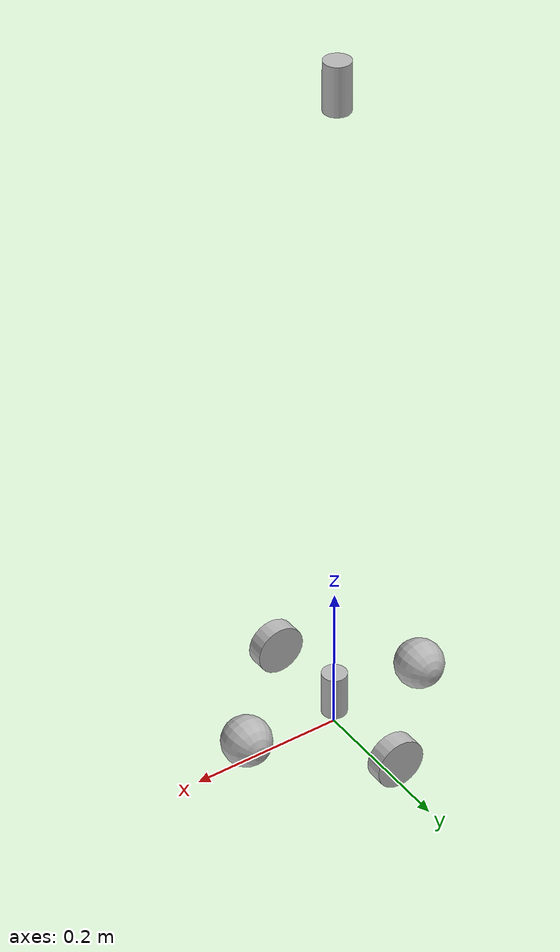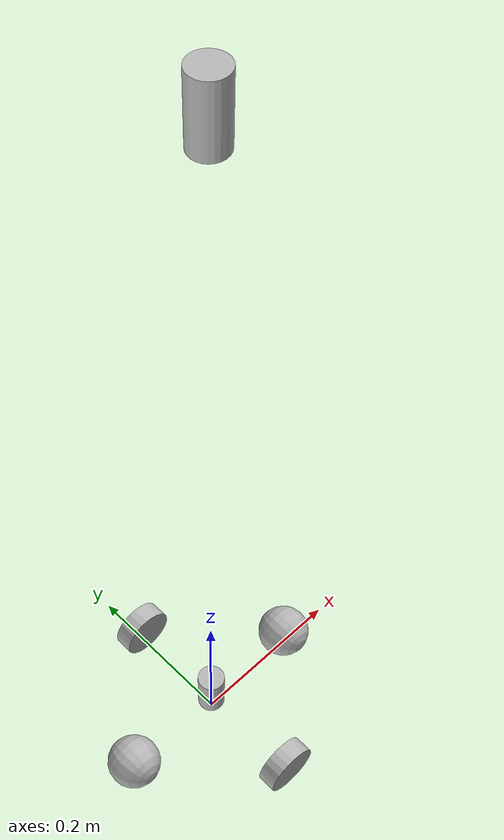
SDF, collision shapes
<?xml version="1.0" ?>
<sdf version="1.4">
  <model name="create">
    <link name="base">
      <inertial>
        <pose>0.001453 -0.000453 0.029787 0 0 0</pose>
        <inertia>
          <ixx>0.058640</ixx>
          <ixy>0.000124</ixy>
          <ixz>0.000615</ixz>
          <iyy>0.058786</iyy>
          <iyz>0.000014</iyz>
          <izz>1.532440</izz>
        </inertia>
        <mass>2.234000</mass>
      </inertial>

      <collision name="human_collision">
        <pose>0 0 0.9 0 0 1.570700</pose>
        <geometry>
          <cylinder>
            <radius>0.016495</radius>
            <length>0.061163</length>
          </cylinder>
        </geometry>
      </collision>
      <visual name="human">
        <pose>0 0 0 0 0 1.570700</pose>
        <geometry>
          <mesh>
            <uri>model://person_walking/meshes/walking.dae</uri>
          </mesh>
        </geometry>
      </visual>

      <collision name="base_collision">
        <pose>0 0 0.047800 0 0 0</pose>
        <geometry>
          <cylinder>
            <radius>0.016495</radius>
            <length>0.061163</length>
          </cylinder>
        </geometry>
      </collision>

      <collision name="front_wheel_collision">
        <pose>0.130000 0 0.03200 0 1.570700 1.570700</pose>
        <geometry>
          <sphere>
            <radius>0.032500</radius>
          </sphere>
        </geometry>
        <surface>
          <friction>
            <ode>
              <mu>0</mu>
              <mu2>0</mu2>
              <fdir1>0 0 0</fdir1>
              <slip1>0</slip1>
              <slip2>0</slip2>
            </ode>
          </friction>
        </surface>
      </collision>

      <collision name="rear_wheel_collision">
        <pose>-0.13 0 0.032 0 1.5707 1.5707</pose>
        <geometry>
          <sphere>
            <radius>0.032500</radius>
          </sphere>
        </geometry>
        <surface>
          <friction>
            <ode>
              <mu>0</mu>
              <mu2>0</mu2>
              <fdir1>0 0 0</fdir1>
              <slip1>0</slip1>
              <slip2>0</slip2>
            </ode>
          </friction>
        </surface>
      </collision>

      <sensor name="left_cliff_sensor" type="ray">
        <pose>0.070000 0.140000 0.027000 0 1.570790 0</pose>
        <ray>
          <scan>
            <horizontal>
              <samples>1</samples>
              <resolution>1.000000</resolution>
              <min_angle>0</min_angle>
              <max_angle>0</max_angle>
            </horizontal>
          </scan>
          <range>
            <min>0.010000</min>
            <max>0.040000</max>
            <resolution>0.100000</resolution>
          </range>
        </ray>
      </sensor>

      <sensor name="leftfront_cliff_sensor" type="ray">
        <pose>0.150000 0.040000 0.027000 0 1.570790 0</pose>
        <ray>
          <scan>
            <horizontal>
              <samples>1</samples>
              <resolution>1.000000</resolution>
              <min_angle>0</min_angle>
              <max_angle>0</max_angle>
            </horizontal>
          </scan>
          <range>
            <min>0.010000</min>
            <max>0.040000</max>
            <resolution>0.100000</resolution>
          </range>
        </ray>
      </sensor>

      <sensor name="right_cliff_sensor" type="ray">
        <pose>0.070000 -0.140000 0.027000 0 1.570790 0</pose>
        <ray>
          <scan>
            <horizontal>
              <samples>1</samples>
              <resolution>1.000000</resolution>
              <min_angle>0</min_angle>
              <max_angle>0</max_angle>
            </horizontal>
          </scan>
          <range>
            <min>0.010000</min>
            <max>0.040000</max>
            <resolution>0.100000</resolution>
          </range>
        </ray>
      </sensor>

      <sensor name="rightfront_cliff_sensor" type="ray">
        <pose>0.150000 -0.040000 0.027000 0 1.570790 0</pose>
        <ray>
          <scan>
            <horizontal>
              <samples>1</samples>
              <resolution>1.000000</resolution>
              <min_angle>0</min_angle>
              <max_angle>0</max_angle>
            </horizontal>
          </scan>
          <range>
            <min>0.010000</min>
            <max>0.040000</max>
            <resolution>0.100000</resolution>
          </range>
        </ray>
      </sensor>

      <sensor name="wall_sensor" type="ray">
        <pose>0.090000 -0.120000 0.059000 0 0 -1.000000</pose>
        <ray>
          <scan>
            <horizontal>
              <samples>1</samples>
              <resolution>1.000000</resolution>
              <min_angle>0</min_angle>
              <max_angle>0</max_angle>
            </horizontal>
          </scan>
          <range>
            <min>0.016000</min>
            <max>0.040000</max>
            <resolution>0.100000</resolution>
          </range>
        </ray>
      </sensor>
    </link>

    <link name="left_wheel">
      <pose>0 0.130000 0.032000 0 0 0</pose>
      <inertial>
        <inertia>
          <ixx>0.001000</ixx>
          <ixy>0</ixy>
          <ixz>0</ixz>
          <iyy>0.001000</iyy>
          <iyz>0</iyz>
          <izz>0.001000</izz>
        </inertia>
        <mass>0.010000</mass>
      </inertial>
      <collision name="collision">
        <pose>0 0 0 0 1.570700 1.570700</pose>
        <geometry>
          <cylinder>
            <radius>0.033000</radius>
            <length>0.023000</length>
          </cylinder>
        </geometry>
        <surface>
          <friction>
            <ode>
              <mu>10</mu>
              <mu2>10</mu2>
              <fdir1>0 0 0</fdir1>
              <slip1>0</slip1>
              <slip2>0</slip2>
            </ode>
          </friction>
        </surface>
      </collision>
    </link>

    <link name="right_wheel">
      <pose>0 -0.130000 0.032000 0 0 0</pose>
      <inertial>
        <inertia>
          <ixx>0.001000</ixx>
          <ixy>0</ixy>
          <ixz>0</ixz>
          <iyy>0.001000</iyy>
          <iyz>0</iyz>
          <izz>0.001000</izz>
        </inertia>
        <mass>0.010000</mass>
      </inertial>
      <collision name="collision">
        <pose>0 0 0 0 1.570700 1.570700</pose>
        <geometry>
          <cylinder>
            <radius>0.033000</radius>
            <length>0.023000</length>
          </cylinder>
        </geometry>
        <surface>
          <friction>
            <ode>
              <mu>10</mu>
              <mu2>10</mu2>
              <fdir1>0 0 0</fdir1>
              <slip1>0</slip1>
              <slip2>0</slip2>
            </ode>
          </friction>
        </surface>
      </collision>
    </link>

    <joint name="left_wheel" type="revolute">
      <parent>base</parent>
      <child>left_wheel</child>
      <axis>
        <xyz>0 1 0</xyz>
      </axis>
    </joint>

    <joint name="right_wheel" type="revolute">
      <parent>base</parent>
      <child>right_wheel</child>
      <axis>
        <xyz>0 1 0</xyz>
      </axis>
    </joint>

    <plugin name="differential_drive_controller" filename="libgazebo_ros_diff_drive.so">
      <alwaysOn>true</alwaysOn>
      <legacyMode>true</legacyMode>
      <updateRate>10</updateRate>
      <leftJoint>left_wheel</leftJoint>
      <rightJoint>right_wheel</rightJoint>
      <wheelSeparation>0.5380</wheelSeparation>
      <wheelDiameter>0.2410</wheelDiameter>
      <torque>20</torque>
      <commandTopic>cmd_vel</commandTopic>
      <odometryTopic>odom</odometryTopic>
      <odometryFrame>odom</odometryFrame>
      <robotBaseFrame>base_footprint</robotBaseFrame>
      </plugin>

      <joint type="revolute" name="joints">
        <child>chipboardBox</child>
        <parent>base</parent>
        <axis>
          <xyz>0 0 0</xyz>
          <limit>
          <upper>0</upper>
          <lower>0</lower>
        </limit>
        </axis>
      </joint>

  </model>

</sdf>
